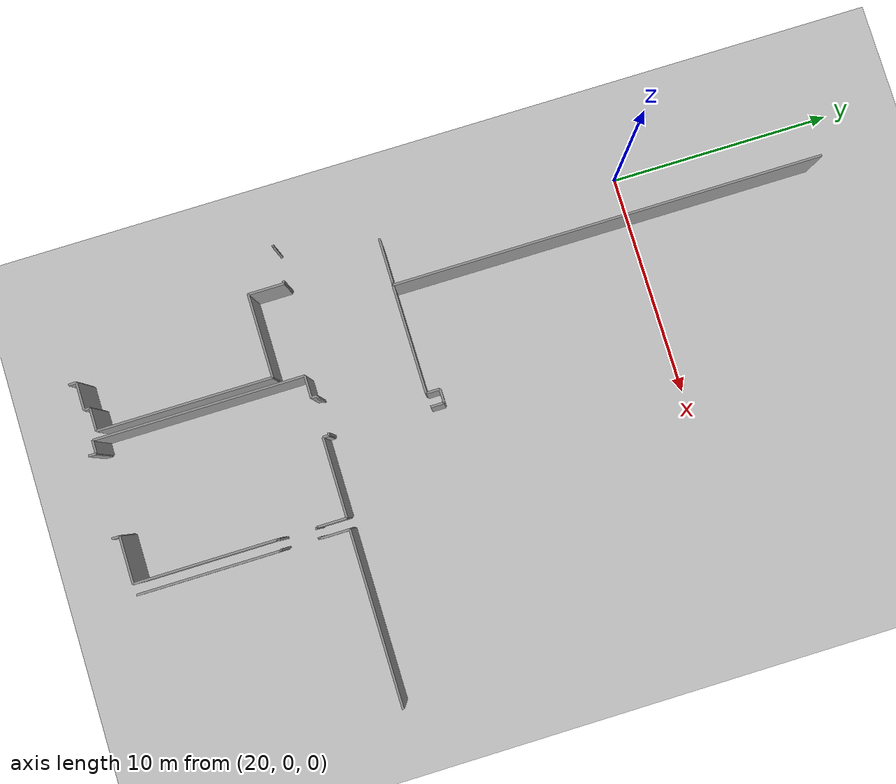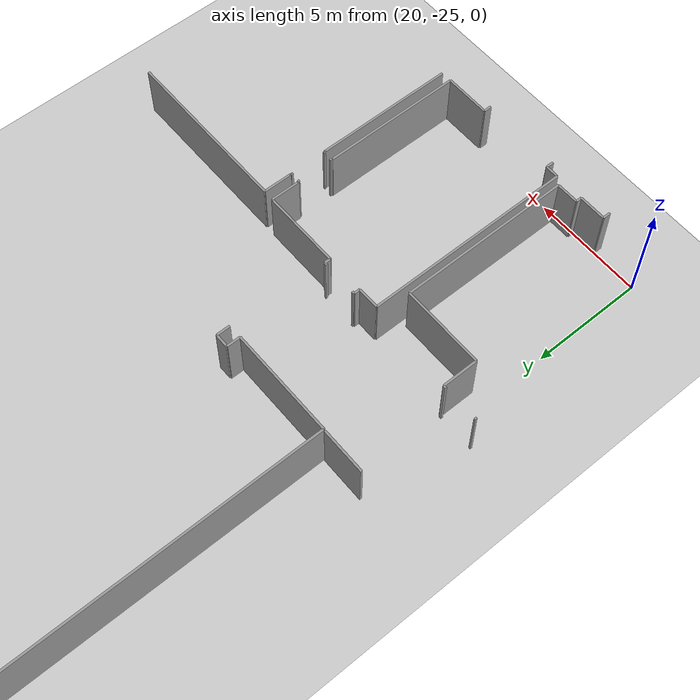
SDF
<sdf version="1.6">
 <world name="default">
  <model name="ground_plane">
   <static>1</static>
   <link name="link">
    <collision name="collision">
     <geometry><plane><normal>0 0 1</normal><size>100 100</size></plane></geometry>
     <surface><friction><ode><mu>100</mu><mu2>50</mu2></ode></friction></surface>
    </collision>
    <visual name="visual">
     <cast_shadows>0</cast_shadows>
     <geometry><plane><normal>0 0 1</normal><size>100 100</size></plane></geometry>
     <material>
      <script><uri>file://media/materials/scripts/gazebo.material</uri><name>Gazebo/Grey</name></script>
     </material>
    </visual>
   </link>
  </model>
  <model name="50045368">
   <static>1</static>
   <link name="Wall_271">
    <collision name="Wall_271_Collision">
     <geometry><box><size>2.02121982211 0.1 2.5</size></box></geometry>
     <pose>1.01060991105 0 1.25 0 0 0</pose>
    </collision>
    <visual name="Wall_271_Visual">
     <pose>1.01060991105 0 1.25 0 0 0</pose>
     <geometry><box><size>2.02121982211 0.1 2.5</size></box></geometry>
     <material>
      <script><uri>file://media/materials/scripts/gazebo.material</uri><name>Gazebo/Grey</name></script>
      <ambient>1 1 1 1</ambient>
     </material>
    </visual>
    <pose>74.8134688691 -36.5480304956 0 0 0 3.14159265359</pose>
   </link>
   <link name="Wall_528">
    <collision name="Wall_528_Collision">
     <geometry><box><size>0.0822109275731 0.1 2.5</size></box></geometry>
     <pose>0.0411054637865 0 1.25 0 0 0</pose>
    </collision>
    <visual name="Wall_528_Visual">
     <pose>0.0411054637865 0 1.25 0 0 0</pose>
     <geometry><box><size>0.0822109275731 0.1 2.5</size></box></geometry>
     <material>
      <script><uri>file://media/materials/scripts/gazebo.material</uri><name>Gazebo/Grey</name></script>
      <ambient>1 1 1 1</ambient>
     </material>
    </visual>
    <pose>71.7223634053 -41.0099110546 0 0 0 0.0</pose>
   </link>
   <link name="Wall_529">
    <collision name="Wall_529_Collision">
     <geometry><box><size>0.1208386277 0.1 2.5</size></box></geometry>
     <pose>0.0604193138501 0 1.25 0 0 0</pose>
    </collision>
    <visual name="Wall_529_Visual">
     <pose>0.0604193138501 0 1.25 0 0 0</pose>
     <geometry><box><size>0.1208386277 0.1 2.5</size></box></geometry>
     <material>
      <script><uri>file://media/materials/scripts/gazebo.material</uri><name>Gazebo/Grey</name></script>
      <ambient>1 1 1 1</ambient>
     </material>
    </visual>
    <pose>73.3473951715 -41.0099110546 0 0 0 0.0</pose>
   </link>
   <link name="Wall_530">
    <collision name="Wall_530_Collision">
     <geometry><box><size>1.60686149936 0.1 2.5</size></box></geometry>
     <pose>0.803430749682 0 1.25 0 0 0</pose>
    </collision>
    <visual name="Wall_530_Visual">
     <pose>0.803430749682 0 1.25 0 0 0</pose>
     <geometry><box><size>1.60686149936 0.1 2.5</size></box></geometry>
     <material>
      <script><uri>file://media/materials/scripts/gazebo.material</uri><name>Gazebo/Grey</name></script>
      <ambient>1 1 1 1</ambient>
     </material>
    </visual>
    <pose>73.4682337992 -41.0099110546 0 0 0 -1.57079632679</pose>
   </link>
   <link name="Wall_531">
    <collision name="Wall_531_Collision">
     <geometry><box><size>3.74269377382 0.1 2.5</size></box></geometry>
     <pose>1.87134688691 0 1.25 0 0 0</pose>
    </collision>
    <visual name="Wall_531_Visual">
     <pose>1.87134688691 0 1.25 0 0 0</pose>
     <geometry><box><size>3.74269377382 0.1 2.5</size></box></geometry>
     <material>
      <script><uri>file://media/materials/scripts/gazebo.material</uri><name>Gazebo/Grey</name></script>
      <ambient>1 1 1 1</ambient>
     </material>
    </visual>
    <pose>73.4682337992 -42.616772554 0 0 0 0.0</pose>
   </link>
   <link name="Wall_532">
    <collision name="Wall_532_Collision">
     <geometry><box><size>7.80317662008 0.1 2.5</size></box></geometry>
     <pose>3.90158831004 0 1.25 0 0 0</pose>
    </collision>
    <visual name="Wall_532_Visual">
     <pose>3.90158831004 0 1.25 0 0 0</pose>
     <geometry><box><size>7.80317662008 0.1 2.5</size></box></geometry>
     <material>
      <script><uri>file://media/materials/scripts/gazebo.material</uri><name>Gazebo/Grey</name></script>
      <ambient>1 1 1 1</ambient>
     </material>
    </visual>
    <pose>77.2109275731 -42.616772554 0 0 0 -1.57079632679</pose>
   </link>
   <link name="Wall_533">
    <collision name="Wall_533_Collision">
     <geometry><box><size>1.0123252859 0.1 2.5</size></box></geometry>
     <pose>0.506162642948 0 1.25 0 0 0</pose>
    </collision>
    <visual name="Wall_533_Visual">
     <pose>0.506162642948 0 1.25 0 0 0</pose>
     <geometry><box><size>1.0123252859 0.1 2.5</size></box></geometry>
     <material>
      <script><uri>file://media/materials/scripts/gazebo.material</uri><name>Gazebo/Grey</name></script>
      <ambient>1 1 1 1</ambient>
     </material>
    </visual>
    <pose>77.2109275731 -50.4199491741 0 0 0 3.14159265359</pose>
   </link>
   <link name="Wall_534">
    <collision name="Wall_534_Collision">
     <geometry><box><size>0.262770012706 0.1 2.5</size></box></geometry>
     <pose>0.131385006353 0 1.25 0 0 0</pose>
    </collision>
    <visual name="Wall_534_Visual">
     <pose>0.131385006353 0 1.25 0 0 0</pose>
     <geometry><box><size>0.262770012706 0.1 2.5</size></box></geometry>
     <material>
      <script><uri>file://media/materials/scripts/gazebo.material</uri><name>Gazebo/Grey</name></script>
      <ambient>1 1 1 1</ambient>
     </material>
    </visual>
    <pose>76.1986022872 -50.4199491741 0 0 0 -1.57079632679</pose>
   </link>
   <link name="Wall_535">
    <collision name="Wall_535_Collision">
     <geometry><box><size>1.22757306226 0.1 2.5</size></box></geometry>
     <pose>0.613786531131 0 1.25 0 0 0</pose>
    </collision>
    <visual name="Wall_535_Visual">
     <pose>0.613786531131 0 1.25 0 0 0</pose>
     <geometry><box><size>1.22757306226 0.1 2.5</size></box></geometry>
     <material>
      <script><uri>file://media/materials/scripts/gazebo.material</uri><name>Gazebo/Grey</name></script>
      <ambient>1 1 1 1</ambient>
     </material>
    </visual>
    <pose>76.1986022872 -50.6827191868 0 0 0 3.14159265359</pose>
   </link>
   <link name="Wall_536">
    <collision name="Wall_536_Collision">
     <geometry><box><size>0.348665819568 0.1 2.5</size></box></geometry>
     <pose>0.174332909784 0 1.25 0 0 0</pose>
    </collision>
    <visual name="Wall_536_Visual">
     <pose>0.174332909784 0 1.25 0 0 0</pose>
     <geometry><box><size>0.348665819568 0.1 2.5</size></box></geometry>
     <material>
      <script><uri>file://media/materials/scripts/gazebo.material</uri><name>Gazebo/Grey</name></script>
      <ambient>1 1 1 1</ambient>
     </material>
    </visual>
    <pose>74.9710292249 -50.6827191868 0 0 0 -1.57079632679</pose>
   </link>
   <link name="Wall_539">
    <collision name="Wall_539_Collision">
     <geometry><box><size>9.3956797967 0.1 2.5</size></box></geometry>
     <pose>4.69783989835 0 1.25 0 0 0</pose>
    </collision>
    <visual name="Wall_539_Visual">
     <pose>4.69783989835 0 1.25 0 0 0</pose>
     <geometry><box><size>9.3956797967 0.1 2.5</size></box></geometry>
     <material>
      <script><uri>file://media/materials/scripts/gazebo.material</uri><name>Gazebo/Grey</name></script>
      <ambient>1 1 1 1</ambient>
     </material>
    </visual>
    <pose>77.5470139771 -50.6818297332 0 0 0 1.57079632679</pose>
   </link>
   <link name="Wall_540">
    <collision name="Wall_540_Collision">
     <geometry><box><size>0.984625158831 0.1 2.5</size></box></geometry>
     <pose>0.492312579415 0 1.25 0 0 0</pose>
    </collision>
    <visual name="Wall_540_Visual">
     <pose>0.492312579415 0 1.25 0 0 0</pose>
     <geometry><box><size>0.984625158831 0.1 2.5</size></box></geometry>
     <material>
      <script><uri>file://media/materials/scripts/gazebo.material</uri><name>Gazebo/Grey</name></script>
      <ambient>1 1 1 1</ambient>
     </material>
    </visual>
    <pose>77.5470139771 -41.2861499365 0 0 0 0.0</pose>
   </link>
   <link name="Wall_541">
    <collision name="Wall_541_Collision">
     <geometry><box><size>0.270902160102 0.1 2.5</size></box></geometry>
     <pose>0.135451080051 0 1.25 0 0 0</pose>
    </collision>
    <visual name="Wall_541_Visual">
     <pose>0.135451080051 0 1.25 0 0 0</pose>
     <geometry><box><size>0.270902160102 0.1 2.5</size></box></geometry>
     <material>
      <script><uri>file://media/materials/scripts/gazebo.material</uri><name>Gazebo/Grey</name></script>
      <ambient>1 1 1 1</ambient>
     </material>
    </visual>
    <pose>78.531639136 -41.2861499365 0 0 0 1.57079632679</pose>
   </link>
   <link name="Wall_542">
    <collision name="Wall_542_Collision">
     <geometry><box><size>0.104701397713 0.1 2.5</size></box></geometry>
     <pose>0.0523506988564 0 1.25 0 0 0</pose>
    </collision>
    <visual name="Wall_542_Visual">
     <pose>0.0523506988564 0 1.25 0 0 0</pose>
     <geometry><box><size>0.104701397713 0.1 2.5</size></box></geometry>
     <material>
      <script><uri>file://media/materials/scripts/gazebo.material</uri><name>Gazebo/Grey</name></script>
      <ambient>1 1 1 1</ambient>
     </material>
    </visual>
    <pose>78.531639136 -41.0152477764 0 0 0 0.0</pose>
   </link>
   <link name="Wall_543">
    <collision name="Wall_543_Collision">
     <geometry><box><size>0.116391359593 0.1 2.5</size></box></geometry>
     <pose>0.0581956797967 0 1.25 0 0 0</pose>
    </collision>
    <visual name="Wall_543_Visual">
     <pose>0.0581956797967 0 1.25 0 0 0</pose>
     <geometry><box><size>0.116391359593 0.1 2.5</size></box></geometry>
     <material>
      <script><uri>file://media/materials/scripts/gazebo.material</uri><name>Gazebo/Grey</name></script>
      <ambient>1 1 1 1</ambient>
     </material>
    </visual>
    <pose>80.1722998729 -41.0152477764 0 0 0 0.0</pose>
   </link>
   <link name="Wall_544">
    <collision name="Wall_544_Collision">
     <geometry><box><size>0.27001270648 0.1 2.5</size></box></geometry>
     <pose>0.13500635324 0 1.25 0 0 0</pose>
    </collision>
    <visual name="Wall_544_Visual">
     <pose>0.13500635324 0 1.25 0 0 0</pose>
     <geometry><box><size>0.27001270648 0.1 2.5</size></box></geometry>
     <material>
      <script><uri>file://media/materials/scripts/gazebo.material</uri><name>Gazebo/Grey</name></script>
      <ambient>1 1 1 1</ambient>
     </material>
    </visual>
    <pose>80.2886912325 -41.0152477764 0 0 0 -1.57079632679</pose>
   </link>
   <link name="Wall_545">
    <collision name="Wall_545_Collision">
     <geometry><box><size>3.58157560356 0.1 2.5</size></box></geometry>
     <pose>1.79078780178 0 1.25 0 0 0</pose>
    </collision>
    <visual name="Wall_545_Visual">
     <pose>1.79078780178 0 1.25 0 0 0</pose>
     <geometry><box><size>3.58157560356 0.1 2.5</size></box></geometry>
     <material>
      <script><uri>file://media/materials/scripts/gazebo.material</uri><name>Gazebo/Grey</name></script>
      <ambient>1 1 1 1</ambient>
     </material>
    </visual>
    <pose>80.2886912325 -41.2852604828 0 0 0 0.0</pose>
   </link>
   <link name="Wall_546">
    <collision name="Wall_546_Collision">
     <geometry><box><size>1.31029224905 0.1 2.5</size></box></geometry>
     <pose>0.655146124524 0 1.25 0 0 0</pose>
    </collision>
    <visual name="Wall_546_Visual">
     <pose>0.655146124524 0 1.25 0 0 0</pose>
     <geometry><box><size>1.31029224905 0.1 2.5</size></box></geometry>
     <material>
      <script><uri>file://media/materials/scripts/gazebo.material</uri><name>Gazebo/Grey</name></script>
      <ambient>1 1 1 1</ambient>
     </material>
    </visual>
    <pose>83.8702668361 -41.2852604828 0 0 0 -1.57079632679</pose>
   </link>
   <link name="Wall_547">
    <collision name="Wall_547_Collision">
     <geometry><box><size>0.0382465057179 0.1 2.5</size></box></geometry>
     <pose>0.019123252859 0 1.25 0 0 0</pose>
    </collision>
    <visual name="Wall_547_Visual">
     <pose>0.019123252859 0 1.25 0 0 0</pose>
     <geometry><box><size>0.0382465057179 0.1 2.5</size></box></geometry>
     <material>
      <script><uri>file://media/materials/scripts/gazebo.material</uri><name>Gazebo/Grey</name></script>
      <ambient>1 1 1 1</ambient>
     </material>
    </visual>
    <pose>83.8702668361 -42.5955527319 0 0 0 0.0</pose>
   </link>
   <link name="Wall_548">
    <collision name="Wall_548_Collision">
     <geometry><box><size>0.0858958068615 0.1 2.5</size></box></geometry>
     <pose>0.0429479034308 0 1.25 0 0 0</pose>
    </collision>
    <visual name="Wall_548_Visual">
     <pose>0.0429479034308 0 1.25 0 0 0</pose>
     <geometry><box><size>0.0858958068615 0.1 2.5</size></box></geometry>
     <material>
      <script><uri>file://media/materials/scripts/gazebo.material</uri><name>Gazebo/Grey</name></script>
      <ambient>1 1 1 1</ambient>
     </material>
    </visual>
    <pose>83.9085133418 -42.5955527319 0 0 0 -1.57079632679</pose>
   </link>
   <link name="Wall_549">
    <collision name="Wall_549_Collision">
     <geometry><box><size>0.0903430749682 0.1 2.5</size></box></geometry>
     <pose>0.0451715374841 0 1.25 0 0 0</pose>
    </collision>
    <visual name="Wall_549_Visual">
     <pose>0.0451715374841 0 1.25 0 0 0</pose>
     <geometry><box><size>0.0903430749682 0.1 2.5</size></box></geometry>
     <material>
      <script><uri>file://media/materials/scripts/gazebo.material</uri><name>Gazebo/Grey</name></script>
      <ambient>1 1 1 1</ambient>
     </material>
    </visual>
    <pose>83.9085133418 -44.240660737 0 0 0 -1.57079632679</pose>
   </link>
   <link name="Wall_550">
    <collision name="Wall_550_Collision">
     <geometry><box><size>0.0311308767472 0.1 2.5</size></box></geometry>
     <pose>0.0155654383736 0 1.25 0 0 0</pose>
    </collision>
    <visual name="Wall_550_Visual">
     <pose>0.0155654383736 0 1.25 0 0 0</pose>
     <geometry><box><size>0.0311308767472 0.1 2.5</size></box></geometry>
     <material>
      <script><uri>file://media/materials/scripts/gazebo.material</uri><name>Gazebo/Grey</name></script>
      <ambient>1 1 1 1</ambient>
     </material>
    </visual>
    <pose>83.9085133418 -44.3310038119 0 0 0 3.14159265359</pose>
   </link>
   <link name="Wall_551">
    <collision name="Wall_551_Collision">
     <geometry><box><size>6.34688691233 0.1 2.5</size></box></geometry>
     <pose>3.17344345616 0 1.25 0 0 0</pose>
    </collision>
    <visual name="Wall_551_Visual">
     <pose>3.17344345616 0 1.25 0 0 0</pose>
     <geometry><box><size>6.34688691233 0.1 2.5</size></box></geometry>
     <material>
      <script><uri>file://media/materials/scripts/gazebo.material</uri><name>Gazebo/Grey</name></script>
      <ambient>1 1 1 1</ambient>
     </material>
    </visual>
    <pose>83.8773824651 -44.3310038119 0 0 0 -1.57079632679</pose>
   </link>
   <link name="Wall_552">
    <collision name="Wall_552_Collision">
     <geometry><box><size>2.08030495553 0.1 2.5</size></box></geometry>
     <pose>1.04015247776 0 1.25 0 0 0</pose>
    </collision>
    <visual name="Wall_552_Visual">
     <pose>1.04015247776 0 1.25 0 0 0</pose>
     <geometry><box><size>2.08030495553 0.1 2.5</size></box></geometry>
     <material>
      <script><uri>file://media/materials/scripts/gazebo.material</uri><name>Gazebo/Grey</name></script>
      <ambient>1 1 1 1</ambient>
     </material>
    </visual>
    <pose>83.8773824651 -50.6778907243 0 0 0 3.14159265359</pose>
   </link>
   <link name="Wall_553">
    <collision name="Wall_553_Collision">
     <geometry><box><size>0.348792884371 0.1 2.5</size></box></geometry>
     <pose>0.174396442186 0 1.25 0 0 0</pose>
    </collision>
    <visual name="Wall_553_Visual">
     <pose>0.174396442186 0 1.25 0 0 0</pose>
     <geometry><box><size>0.348792884371 0.1 2.5</size></box></geometry>
     <material>
      <script><uri>file://media/materials/scripts/gazebo.material</uri><name>Gazebo/Grey</name></script>
      <ambient>1 1 1 1</ambient>
     </material>
    </visual>
    <pose>81.7970775095 -50.6778907243 0 0 0 -1.57079632679</pose>
   </link>
   <link name="Wall_554">
    <collision name="Wall_554_Collision">
     <geometry><box><size>0.335324015248 0.1 2.5</size></box></geometry>
     <pose>0.167662007624 0 1.25 0 0 0</pose>
    </collision>
    <visual name="Wall_554_Visual">
     <pose>0.167662007624 0 1.25 0 0 0</pose>
     <geometry><box><size>0.335324015248 0.1 2.5</size></box></geometry>
     <material>
      <script><uri>file://media/materials/scripts/gazebo.material</uri><name>Gazebo/Grey</name></script>
      <ambient>1 1 1 1</ambient>
     </material>
    </visual>
    <pose>78.1411689962 -51.0266836086 0 0 0 1.57079632679</pose>
   </link>
   <link name="Wall_555">
    <collision name="Wall_555_Collision">
     <geometry><box><size>0.594231440526 0.1 2.5</size></box></geometry>
     <pose>0.297115720263 0 1.25 0 0 0</pose>
    </collision>
    <visual name="Wall_555_Visual">
     <pose>0.297115720263 0 1.25 0 0 0</pose>
     <geometry><box><size>0.594231440526 0.1 2.5</size></box></geometry>
     <material>
      <script><uri>file://media/materials/scripts/gazebo.material</uri><name>Gazebo/Grey</name></script>
      <ambient>1 1 1 1</ambient>
     </material>
    </visual>
    <pose>78.1411689962 -50.6913595934 0 0 0 3.12555467894</pose>
   </link>
   <link name="Wall_556">
    <collision name="Wall_556_Collision">
     <geometry><box><size>6.31016518424 0.1 2.5</size></box></geometry>
     <pose>3.15508259212 0 1.25 0 0 0</pose>
    </collision>
    <visual name="Wall_556_Visual">
     <pose>3.15508259212 0 1.25 0 0 0</pose>
     <geometry><box><size>6.31016518424 0.1 2.5</size></box></geometry>
     <material>
      <script><uri>file://media/materials/scripts/gazebo.material</uri><name>Gazebo/Grey</name></script>
      <ambient>1 1 1 1</ambient>
     </material>
    </visual>
    <pose>84.3697585769 -50.6628970775 0 0 0 1.57079632679</pose>
   </link>
   <link name="Wall_557">
    <collision name="Wall_557_Collision">
     <geometry><box><size>0.0264294790343 0.1 2.5</size></box></geometry>
     <pose>0.0132147395172 0 1.25 0 0 0</pose>
    </collision>
    <visual name="Wall_557_Visual">
     <pose>0.0132147395172 0 1.25 0 0 0</pose>
     <geometry><box><size>0.0264294790343 0.1 2.5</size></box></geometry>
     <material>
      <script><uri>file://media/materials/scripts/gazebo.material</uri><name>Gazebo/Grey</name></script>
      <ambient>1 1 1 1</ambient>
     </material>
    </visual>
    <pose>84.3697585769 -44.3527318933 0 0 0 3.14159265359</pose>
   </link>
   <link name="Wall_558">
    <collision name="Wall_558_Collision">
     <geometry><box><size>0.0831003811944 0.1 2.5</size></box></geometry>
     <pose>0.0415501905972 0 1.25 0 0 0</pose>
    </collision>
    <visual name="Wall_558_Visual">
     <pose>0.0415501905972 0 1.25 0 0 0</pose>
     <geometry><box><size>0.0831003811944 0.1 2.5</size></box></geometry>
     <material>
      <script><uri>file://media/materials/scripts/gazebo.material</uri><name>Gazebo/Grey</name></script>
      <ambient>1 1 1 1</ambient>
     </material>
    </visual>
    <pose>84.3433290978 -44.3527318933 0 0 0 1.57079632679</pose>
   </link>
   <link name="Wall_559">
    <collision name="Wall_559_Collision">
     <geometry><box><size>0.103811944091 0.1 2.5</size></box></geometry>
     <pose>0.0519059720457 0 1.25 0 0 0</pose>
    </collision>
    <visual name="Wall_559_Visual">
     <pose>0.0519059720457 0 1.25 0 0 0</pose>
     <geometry><box><size>0.103811944091 0.1 2.5</size></box></geometry>
     <material>
      <script><uri>file://media/materials/scripts/gazebo.material</uri><name>Gazebo/Grey</name></script>
      <ambient>1 1 1 1</ambient>
     </material>
    </visual>
    <pose>84.3433290978 -42.6974587039 0 0 0 1.57079632679</pose>
   </link>
   <link name="Wall_560">
    <collision name="Wall_560_Collision">
     <geometry><box><size>0.0202033036849 0.1 2.5</size></box></geometry>
     <pose>0.0101016518424 0 1.25 0 0 0</pose>
    </collision>
    <visual name="Wall_560_Visual">
     <pose>0.0101016518424 0 1.25 0 0 0</pose>
     <geometry><box><size>0.0202033036849 0.1 2.5</size></box></geometry>
     <material>
      <script><uri>file://media/materials/scripts/gazebo.material</uri><name>Gazebo/Grey</name></script>
      <ambient>1 1 1 1</ambient>
     </material>
    </visual>
    <pose>84.3433290978 -42.5936467598 0 0 0 0.0</pose>
   </link>
   <link name="Wall_561">
    <collision name="Wall_561_Collision">
     <geometry><box><size>1.29313850064 0.1 2.5</size></box></geometry>
     <pose>0.646569250318 0 1.25 0 0 0</pose>
    </collision>
    <visual name="Wall_561_Visual">
     <pose>0.646569250318 0 1.25 0 0 0</pose>
     <geometry><box><size>1.29313850064 0.1 2.5</size></box></geometry>
     <material>
      <script><uri>file://media/materials/scripts/gazebo.material</uri><name>Gazebo/Grey</name></script>
      <ambient>1 1 1 1</ambient>
     </material>
    </visual>
    <pose>84.3635324015 -42.5936467598 0 0 0 1.57079632679</pose>
   </link>
   <link name="Wall_562">
    <collision name="Wall_562_Collision">
     <geometry><box><size>7.82973316391 0.1 2.5</size></box></geometry>
     <pose>3.91486658196 0 1.25 0 0 0</pose>
    </collision>
    <visual name="Wall_562_Visual">
     <pose>3.91486658196 0 1.25 0 0 0</pose>
     <geometry><box><size>7.82973316391 0.1 2.5</size></box></geometry>
     <material>
      <script><uri>file://media/materials/scripts/gazebo.material</uri><name>Gazebo/Grey</name></script>
      <ambient>1 1 1 1</ambient>
     </material>
    </visual>
    <pose>84.3635324015 -41.3005082592 0 0 0 0.0</pose>
   </link>
   <link name="Wall_583">
    <collision name="Wall_583_Collision">
     <geometry><box><size>19.3893265565 0.1 2.5</size></box></geometry>
     <pose>9.69466327827 0 1.25 0 0 0</pose>
    </collision>
    <visual name="Wall_583_Visual">
     <pose>9.69466327827 0 1.25 0 0 0</pose>
     <geometry><box><size>19.3893265565 0.1 2.5</size></box></geometry>
     <material>
      <script><uri>file://media/materials/scripts/gazebo.material</uri><name>Gazebo/Grey</name></script>
      <ambient>1 1 1 1</ambient>
     </material>
    </visual>
    <pose>74.9 -36.5625158831 0 0 0 1.57079632679</pose>
   </link>
   <link name="Wall_616">
    <collision name="Wall_616_Collision">
     <geometry><box><size>0.602033036849 0.1 2.5</size></box></geometry>
     <pose>0.301016518424 0 1.25 0 0 0</pose>
    </collision>
    <visual name="Wall_616_Visual">
     <pose>0.301016518424 0 1.25 0 0 0</pose>
     <geometry><box><size>0.602033036849 0.1 2.5</size></box></geometry>
     <material>
      <script><uri>file://media/materials/scripts/gazebo.material</uri><name>Gazebo/Grey</name></script>
      <ambient>1 1 1 1</ambient>
     </material>
    </visual>
    <pose>80.3966963151 -36.5372299873 0 0 0 1.57079632679</pose>
   </link>
   <link name="Wall_617">
    <collision name="Wall_617_Collision">
     <geometry><box><size>0.618932655654 0.1 2.5</size></box></geometry>
     <pose>0.309466327827 0 1.25 0 0 0</pose>
    </collision>
    <visual name="Wall_617_Visual">
     <pose>0.309466327827 0 1.25 0 0 0</pose>
     <geometry><box><size>0.618932655654 0.1 2.5</size></box></geometry>
     <material>
      <script><uri>file://media/materials/scripts/gazebo.material</uri><name>Gazebo/Grey</name></script>
      <ambient>1 1 1 1</ambient>
     </material>
    </visual>
    <pose>80.3966963151 -35.9351969504 0 0 0 3.14159265359</pose>
   </link>
   <link name="Wall_618">
    <collision name="Wall_618_Collision">
     <geometry><box><size>0.614739517154 0.1 2.5</size></box></geometry>
     <pose>0.307369758577 0 1.25 0 0 0</pose>
    </collision>
    <visual name="Wall_618_Visual">
     <pose>0.307369758577 0 1.25 0 0 0</pose>
     <geometry><box><size>0.614739517154 0.1 2.5</size></box></geometry>
     <material>
      <script><uri>file://media/materials/scripts/gazebo.material</uri><name>Gazebo/Grey</name></script>
      <ambient>1 1 1 1</ambient>
     </material>
    </visual>
    <pose>79.7777636595 -35.9351969504 0 0 0 -1.57079632679</pose>
   </link>
   <link name="Wall_619">
    <collision name="Wall_619_Collision">
     <geometry><box><size>4.87777988016 0.1 2.5</size></box></geometry>
     <pose>2.43888994008 0 1.25 0 0 0</pose>
    </collision>
    <visual name="Wall_619_Visual">
     <pose>2.43888994008 0 1.25 0 0 0</pose>
     <geometry><box><size>4.87777988016 0.1 2.5</size></box></geometry>
     <material>
      <script><uri>file://media/materials/scripts/gazebo.material</uri><name>Gazebo/Grey</name></script>
      <ambient>1 1 1 1</ambient>
     </material>
    </visual>
    <pose>79.7777636595 -36.5499364676 0 0 0 -3.13901372839</pose>
   </link>
   <pose>-52.8 25.6383100381 0 0 0 0</pose>
  </model>
 </world>
</sdf>
